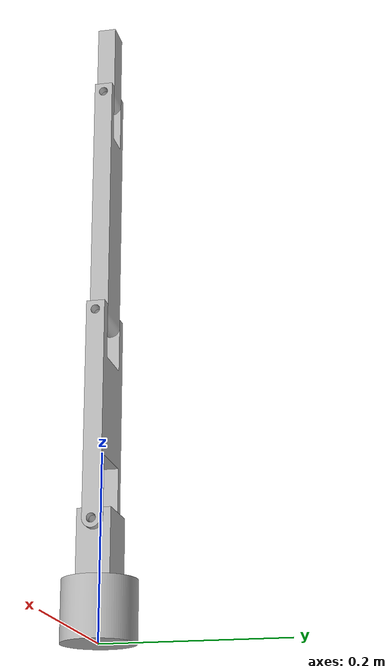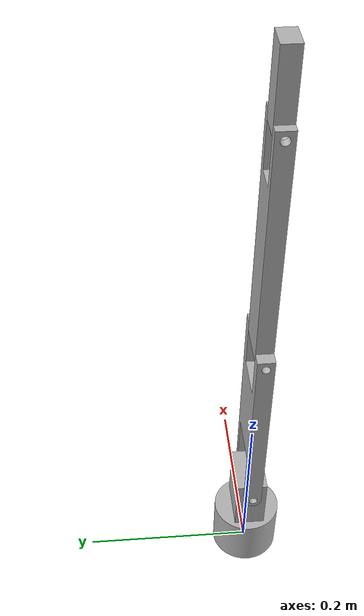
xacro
<?xml version="1.0"?>
<robot xmlns:xacro="http://www.ros.org/wiki/xacro" name="simple_arm_parts">
    <xacro:arg name="initial_positions_file" default="initial_positions.yaml" />

    <!-- Import simple_arm_parts urdf file -->
    <xacro:include filename="$(find simple_arm_parts_description)/urdf/simple_arm_parts.xacro" />

    <!-- Import control_xacro -->
    <xacro:include filename="simple_arm_parts.ros2_control.xacro" />

    <xacro:simple_arm_parts_ros2_control name="FakeSystem" initial_positions_file="$(arg initial_positions_file)"/>

</robot>

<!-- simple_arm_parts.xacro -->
<robot name="simple_arm_parts" xmlns:xacro="http://www.ros.org/wiki/xacro">

<xacro:include filename="$(find simple_arm_parts_description)/urdf/materials.xacro" />
<xacro:include filename="$(find simple_arm_parts_description)/urdf/simple_arm_parts.trans" />
<xacro:include filename="$(find simple_arm_parts_description)/urdf/simple_arm_parts.gazebo" />
<link name="base_link">
  <inertial>
    <origin xyz="0.0 0.0 0.0325" rpy="0 0 0"/>
    <mass value="2.564796242390707"/>
    <inertia ixx="0.001929" iyy="0.001929" izz="0.002052" ixy="0.0" iyz="0.0" ixz="0.0"/>
  </inertial>
  <visual>
    <origin xyz="0 0 0" rpy="0 0 0"/>
    <geometry>
      <mesh filename="file://$(find simple_arm_parts_description)/meshes/base_link.stl" scale="0.001 0.001 0.001"/>
    </geometry>
    <material name="silver"/>
  </visual>
  <collision>
    <origin xyz="0 0 0" rpy="0 0 0"/>
    <geometry>
      <mesh filename="file://$(find simple_arm_parts_description)/meshes/base_link.stl" scale="0.001 0.001 0.001"/>
    </geometry>
  </collision>
</link>

<link name="root_1">
  <inertial>
    <origin xyz="0.0 -3.991767972316258e-18 0.03419943717449704" rpy="0 0 0"/>
    <mass value="1.1178526436205143"/>
    <inertia ixx="0.000577" iyy="0.000764" izz="0.00044" ixy="0.0" iyz="0.0" ixz="-0.0"/>
  </inertial>
  <visual>
    <origin xyz="-0.0 0.0 -0.065" rpy="0 0 0"/>
    <geometry>
      <mesh filename="file://$(find simple_arm_parts_description)/meshes/root_1.stl" scale="0.001 0.001 0.001"/>
    </geometry>
    <material name="silver"/>
  </visual>
  <collision>
    <origin xyz="-0.0 0.0 -0.065" rpy="0 0 0"/>
    <geometry>
      <mesh filename="file://$(find simple_arm_parts_description)/meshes/root_1.stl" scale="0.001 0.001 0.001"/>
    </geometry>
  </collision>
</link>

<link name="arm1_1">
  <inertial>
    <origin xyz="-9.903479720348563e-18 6.0782606783639295e-15 0.12241385002301018" rpy="0 0 0"/>
    <mass value="1.8022789995338637"/>
    <inertia ixx="0.005098" iyy="0.006231" izz="0.001255" ixy="0.0" iyz="0.0" ixz="-0.0"/>
  </inertial>
  <visual>
    <origin xyz="-0.0 -0.0 -0.1218" rpy="0 0 0"/>
    <geometry>
      <mesh filename="file://$(find simple_arm_parts_description)/meshes/arm1_1.stl" scale="0.001 0.001 0.001"/>
    </geometry>
    <material name="silver"/>
  </visual>
  <collision>
    <origin xyz="-0.0 -0.0 -0.1218" rpy="0 0 0"/>
    <geometry>
      <mesh filename="file://$(find simple_arm_parts_description)/meshes/arm1_1.stl" scale="0.001 0.001 0.001"/>
    </geometry>
  </collision>
</link>

<link name="arm2_1">
  <inertial>
    <origin xyz="0.0 -3.394198000635194e-15 0.1188765327603048" rpy="0 0 0"/>
    <mass value="1.8996803099648103"/>
    <inertia ixx="0.010287" iyy="0.010657" izz="0.000498" ixy="0.0" iyz="0.0" ixz="0.0"/>
  </inertial>
  <visual>
    <origin xyz="-0.0 -0.0 -0.34845" rpy="0 0 0"/>
    <geometry>
      <mesh filename="file://$(find simple_arm_parts_description)/meshes/arm2_1.stl" scale="0.001 0.001 0.001"/>
    </geometry>
    <material name="silver"/>
  </visual>
  <collision>
    <origin xyz="-0.0 -0.0 -0.34845" rpy="0 0 0"/>
    <geometry>
      <mesh filename="file://$(find simple_arm_parts_description)/meshes/arm2_1.stl" scale="0.001 0.001 0.001"/>
    </geometry>
  </collision>
</link>

<link name="end_1">
  <inertial>
    <origin xyz="-5.326787215499991e-18 1.1544479592792356e-14 0.04024837272120274" rpy="0 0 0"/>
    <mass value="0.418846126196782"/>
    <inertia ixx="0.000301" iyy="0.000318" izz="4.6e-05" ixy="-0.0" iyz="0.0" ixz="-0.0"/>
  </inertial>
  <visual>
    <origin xyz="-0.0 -0.0 -0.6171" rpy="0 0 0"/>
    <geometry>
      <mesh filename="file://$(find simple_arm_parts_description)/meshes/end_1.stl" scale="0.001 0.001 0.001"/>
    </geometry>
    <material name="silver"/>
  </visual>
  <collision>
    <origin xyz="-0.0 -0.0 -0.6171" rpy="0 0 0"/>
    <geometry>
      <mesh filename="file://$(find simple_arm_parts_description)/meshes/end_1.stl" scale="0.001 0.001 0.001"/>
    </geometry>
  </collision>
</link>

<joint name="joint1" type="continuous">
  <origin xyz="0.0 0.0 0.065" rpy="0 0 0"/>
  <parent link="base_link"/>
  <child link="root_1"/>
  <axis xyz="0.0 0.0 1.0"/>
</joint>

<joint name="joint2" type="revolute">
  <origin xyz="0.0 0.0 0.0568" rpy="0 0 0"/>
  <parent link="root_1"/>
  <child link="arm1_1"/>
  <axis xyz="1.0 0.0 0.0"/>
  <limit upper="2.268928" lower="-2.268928" effort="100" velocity="100"/>
</joint>

<joint name="joint3" type="revolute">
  <origin xyz="0.0 0.0 0.22665" rpy="0 0 0"/>
  <parent link="arm1_1"/>
  <child link="arm2_1"/>
  <axis xyz="-1.0 0.0 0.0"/>
  <limit upper="2.356194" lower="-2.356194" effort="100" velocity="100"/>
</joint>

<joint name="joint4" type="revolute">
  <origin xyz="0.0 0.0 0.26865" rpy="0 0 0"/>
  <parent link="arm2_1"/>
  <child link="end_1"/>
  <axis xyz="-1.0 0.0 0.0"/>
  <limit upper="2.356194" lower="-2.356194" effort="100" velocity="100"/>
</joint>

</robot>

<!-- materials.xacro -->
<robot name="simple_arm_parts" xmlns:xacro="http://www.ros.org/wiki/xacro" >

<material name="silver">
  <color rgba="0.700 0.700 0.700 1.000"/>
</material>

</robot>

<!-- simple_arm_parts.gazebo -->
<robot name="simple_arm_parts" xmlns:xacro="http://www.ros.org/wiki/xacro" >

<xacro:property name="body_color" value="Gazebo/Silver" />

<gazebo>
  <plugin name="control" filename="libgazebo_ros_control.so"/>
</gazebo>
<gazebo reference="base_link">
  <material>${body_color}</material>
  <mu1>0.2</mu1>
  <mu2>0.2</mu2>
  <self_collide>true</self_collide>
  <gravity>true</gravity>
</gazebo>

<gazebo reference="root_1">
  <material>${body_color}</material>
  <mu1>0.2</mu1>
  <mu2>0.2</mu2>
  <self_collide>true</self_collide>
</gazebo>

<gazebo reference="arm1_1">
  <material>${body_color}</material>
  <mu1>0.2</mu1>
  <mu2>0.2</mu2>
  <self_collide>true</self_collide>
</gazebo>

<gazebo reference="arm2_1">
  <material>${body_color}</material>
  <mu1>0.2</mu1>
  <mu2>0.2</mu2>
  <self_collide>true</self_collide>
</gazebo>

<gazebo reference="end_1">
  <material>${body_color}</material>
  <mu1>0.2</mu1>
  <mu2>0.2</mu2>
  <self_collide>true</self_collide>
</gazebo>

</robot>
